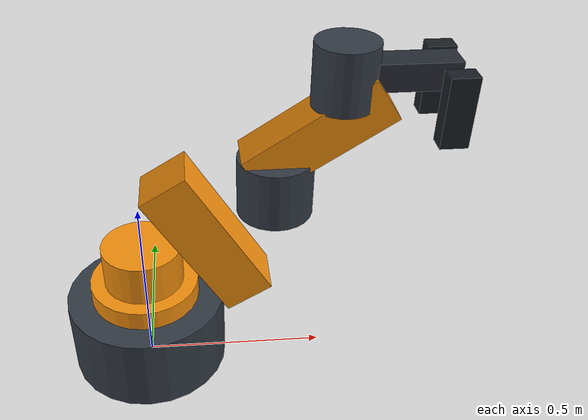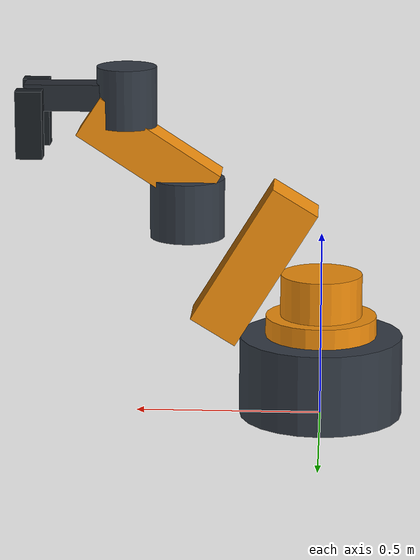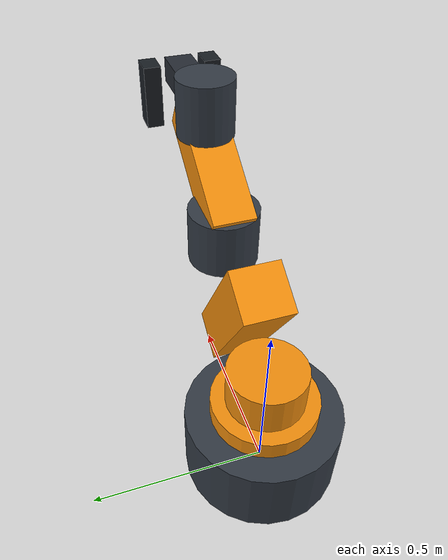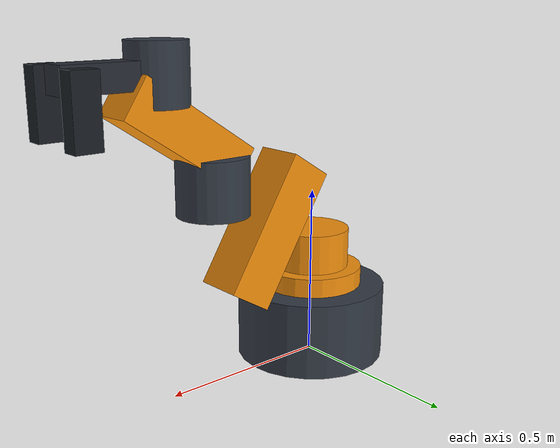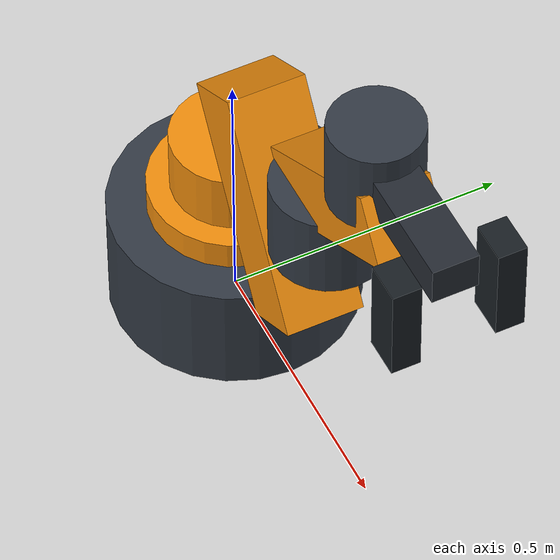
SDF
<?xml version="1.0"?>
<sdf version="1.8">
  <model name="warehouse_robot_arm">
    <static>true</static>
    <link name="base_link">
      <collision name="base_collision">
        <pose>0 0 0.11 0 0 0</pose>
        <geometry>
          <cylinder>
            <radius>0.22</radius>
            <length>0.22</length>
          </cylinder>
        </geometry>
      </collision>
      <visual name="base">
        <pose>0 0 0.11 0 0 0</pose>
        <geometry>
          <cylinder>
            <radius>0.22</radius>
            <length>0.22</length>
          </cylinder>
        </geometry>
        <material>
          <ambient>0.12 0.14 0.17 1</ambient>
          <diffuse>0.20 0.23 0.27 1</diffuse>
        </material>
      </visual>
      <visual name="turntable">
        <pose>0 0 0.235 0 0 0</pose>
        <geometry>
          <cylinder>
            <radius>0.15</radius>
            <length>0.08</length>
          </cylinder>
        </geometry>
        <material>
          <ambient>0.85 0.45 0.03 1</ambient>
          <diffuse>0.95 0.56 0.05 1</diffuse>
        </material>
      </visual>
    </link>

    <link name="shoulder_link">
      <pose>0 0 0.30 0 0 0</pose>
      <collision name="shoulder_collision">
        <pose>0.18 0 0.12 0 1.02 0</pose>
        <geometry>
          <box>
            <size>0.42 0.14 0.14</size>
          </box>
        </geometry>
      </collision>
      <visual name="shoulder_joint">
        <geometry>
          <cylinder>
            <radius>0.11</radius>
            <length>0.18</length>
          </cylinder>
        </geometry>
        <material>
          <diffuse>0.95 0.56 0.05 1</diffuse>
        </material>
      </visual>
      <visual name="shoulder_body">
        <pose>0.18 0 0.12 0 1.02 0</pose>
        <geometry>
          <box>
            <size>0.42 0.14 0.14</size>
          </box>
        </geometry>
        <material>
          <diffuse>0.95 0.56 0.05 1</diffuse>
        </material>
      </visual>
    </link>

    <link name="forearm_link">
      <pose>0.36 0 0.57 0 0 0</pose>
      <collision name="forearm_collision">
        <pose>0.10 0 0.15 0 -0.58 0</pose>
        <geometry>
          <box>
            <size>0.38 0.12 0.12</size>
          </box>
        </geometry>
      </collision>
      <visual name="elbow_joint">
        <geometry>
          <cylinder>
            <radius>0.10</radius>
            <length>0.16</length>
          </cylinder>
        </geometry>
        <material>
          <diffuse>0.20 0.23 0.27 1</diffuse>
        </material>
      </visual>
      <visual name="forearm_body">
        <pose>0.10 0 0.15 0 -0.58 0</pose>
        <geometry>
          <box>
            <size>0.38 0.12 0.12</size>
          </box>
        </geometry>
        <material>
          <diffuse>0.95 0.56 0.05 1</diffuse>
        </material>
      </visual>
    </link>

    <link name="tool_link">
      <pose>0.52 0 0.87 0 0 0</pose>
      <collision name="tool_collision">
        <geometry>
          <box>
            <size>0.34 0.18 0.10</size>
          </box>
        </geometry>
      </collision>
      <visual name="wrist">
        <geometry>
          <cylinder>
            <radius>0.08</radius>
            <length>0.16</length>
          </cylinder>
        </geometry>
        <material>
          <diffuse>0.20 0.23 0.27 1</diffuse>
        </material>
      </visual>
      <visual name="gripper_bar">
        <pose>0.13 0 0 0 0 0</pose>
        <geometry>
          <box>
            <size>0.28 0.08 0.07</size>
          </box>
        </geometry>
        <material>
          <diffuse>0.15 0.17 0.20 1</diffuse>
        </material>
      </visual>
      <visual name="gripper_left">
        <pose>0.25 0.09 -0.06 0 0 0</pose>
        <geometry>
          <box>
            <size>0.07 0.05 0.18</size>
          </box>
        </geometry>
        <material>
          <diffuse>0.10 0.12 0.14 1</diffuse>
        </material>
      </visual>
      <visual name="gripper_right">
        <pose>0.25 -0.09 -0.06 0 0 0</pose>
        <geometry>
          <box>
            <size>0.07 0.05 0.18</size>
          </box>
        </geometry>
        <material>
          <diffuse>0.10 0.12 0.14 1</diffuse>
        </material>
      </visual>
    </link>

    <joint name="base_to_shoulder" type="fixed">
      <parent>base_link</parent>
      <child>shoulder_link</child>
    </joint>
    <joint name="shoulder_to_forearm" type="fixed">
      <parent>shoulder_link</parent>
      <child>forearm_link</child>
    </joint>
    <joint name="forearm_to_tool" type="fixed">
      <parent>forearm_link</parent>
      <child>tool_link</child>
    </joint>
  </model>
</sdf>
